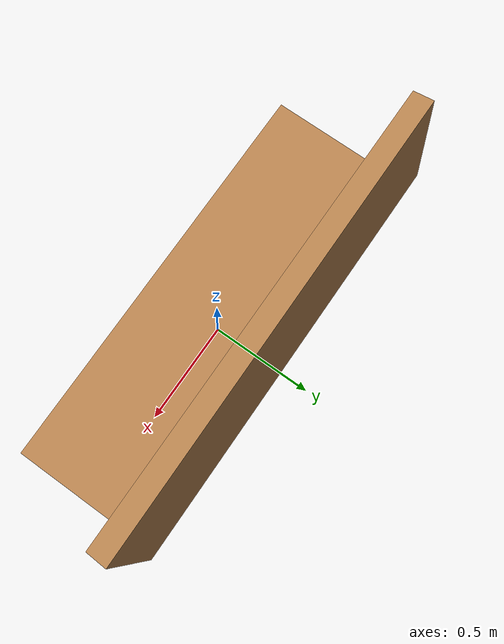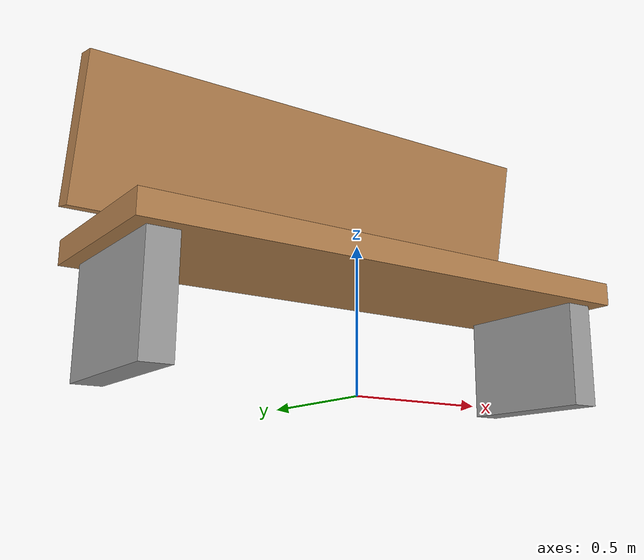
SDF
<?xml version="1.0" ?>
<sdf version="1.6">
  <model name="campus_bench">
    <static>true</static>
    <link name="link">
      <collision name="collision_seat">
        <pose>0 0 0.4 0 0 0</pose>
        <geometry>
          <box>
            <size>1.8 0.6 0.08</size>
          </box>
        </geometry>
      </collision>
      <visual name="visual_seat">
        <pose>0 0 0.4 0 0 0</pose>
        <geometry>
          <box>
            <size>1.8 0.6 0.08</size>
          </box>
        </geometry>
        <material>
          <script>
            <uri>file://media/materials/scripts/gazebo.material</uri>
            <name>Gazebo/Wood</name>
          </script>
        </material>
      </visual>
      <visual name="visual_backrest">
        <pose>0 0.26 0.8 0.2 0 0</pose>
        <geometry>
          <box>
            <size>1.8 0.08 0.5</size>
          </box>
        </geometry>
        <material>
          <script>
            <uri>file://media/materials/scripts/gazebo.material</uri>
            <name>Gazebo/Wood</name>
          </script>
        </material>
      </visual>
      <visual name="visual_leg_left">
        <pose>-0.8 0 0.2 0 0 0</pose>
        <geometry>
          <box>
            <size>0.1 0.5 0.4</size>
          </box>
        </geometry>
        <material>
          <script>
            <uri>file://media/materials/scripts/gazebo.material</uri>
            <name>Gazebo/Grey</name>
          </script>
        </material>
      </visual>
      <visual name="visual_leg_right">
        <pose>0.8 0 0.2 0 0 0</pose>
        <geometry>
          <box>
            <size>0.1 0.5 0.4</size>
          </box>
        </geometry>
        <material>
          <script>
            <uri>file://media/materials/scripts/gazebo.material</uri>
            <name>Gazebo/Grey</name>
          </script>
        </material>
      </visual>
    </link>
  </model>
</sdf>
